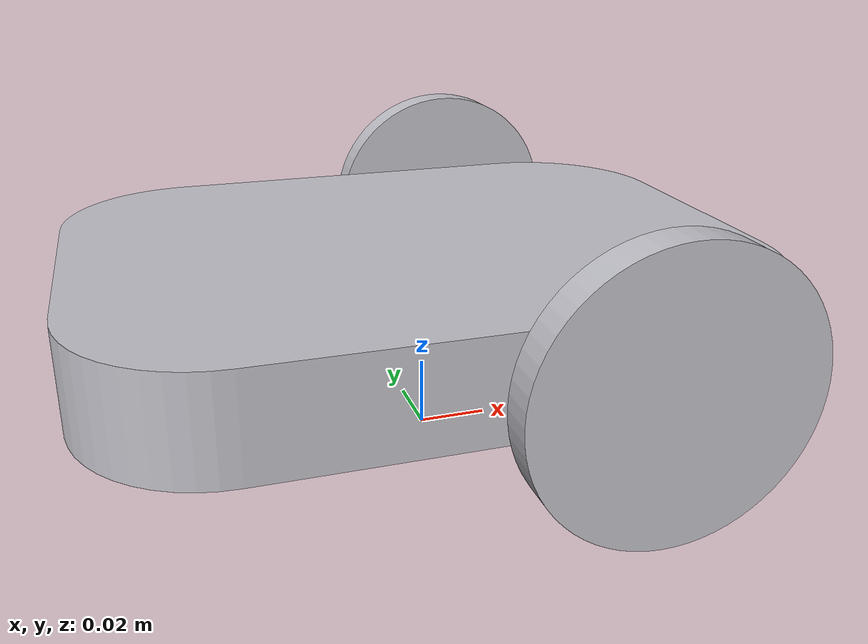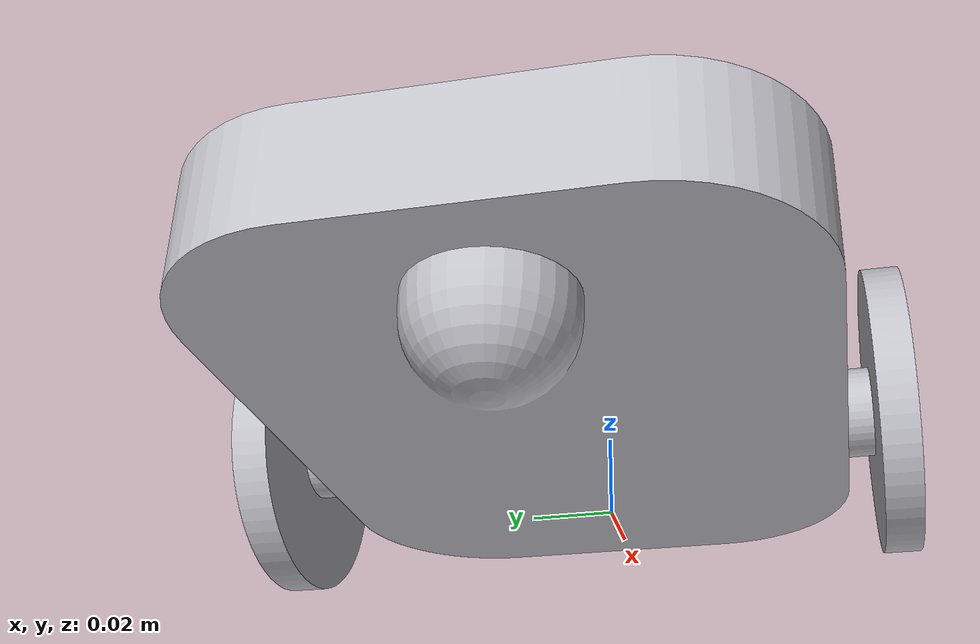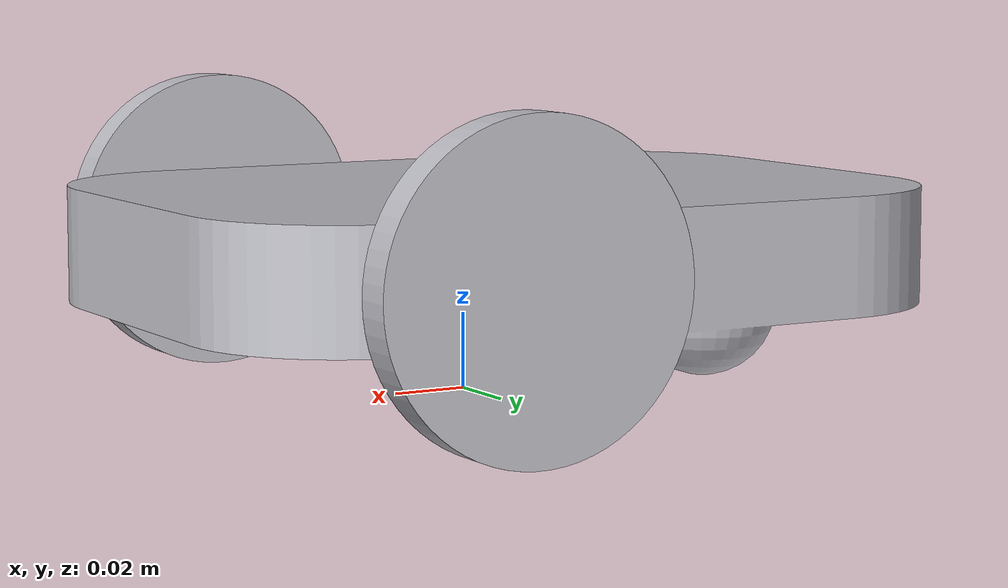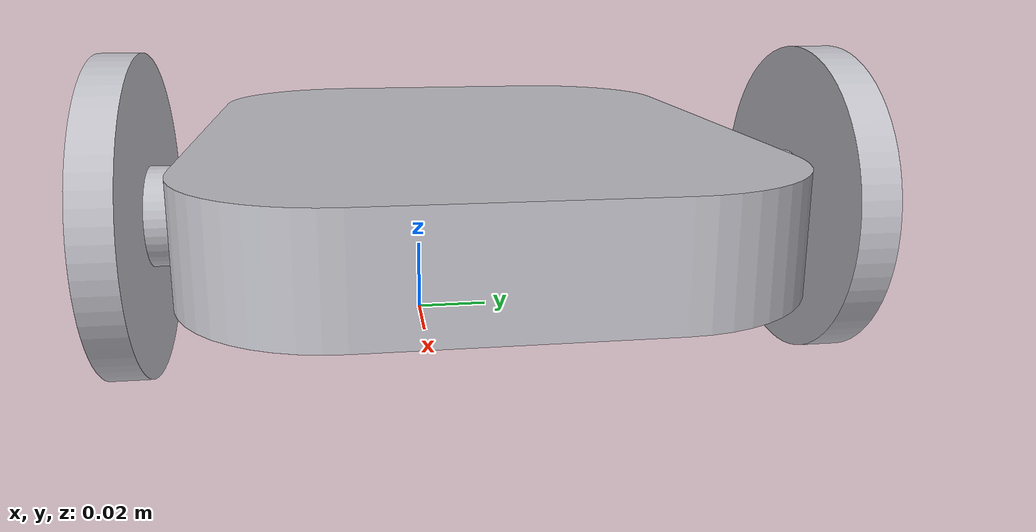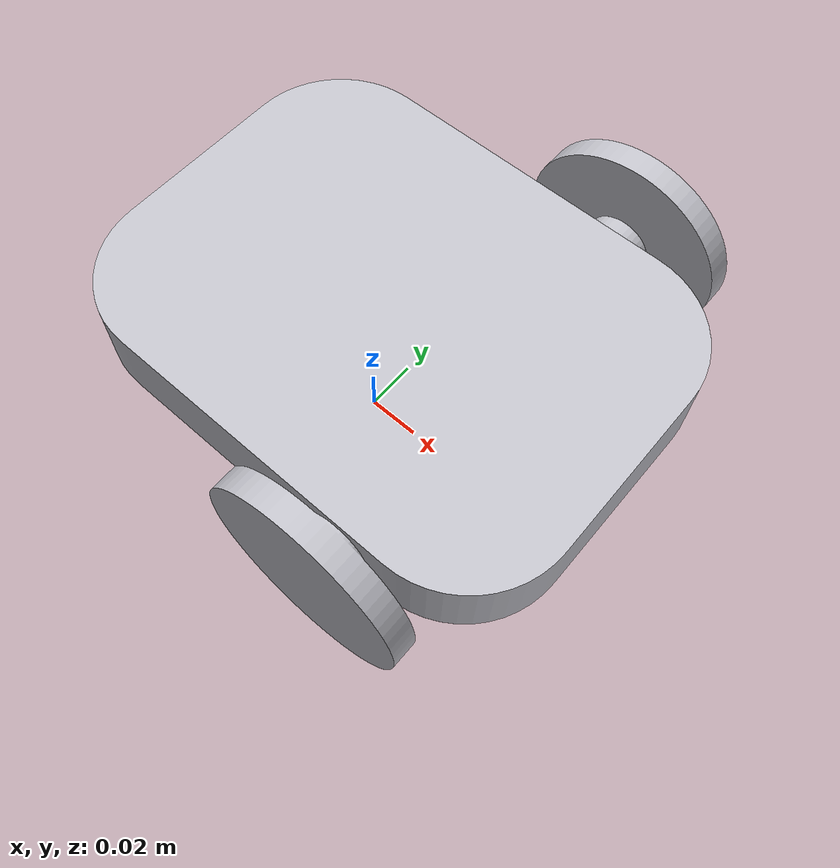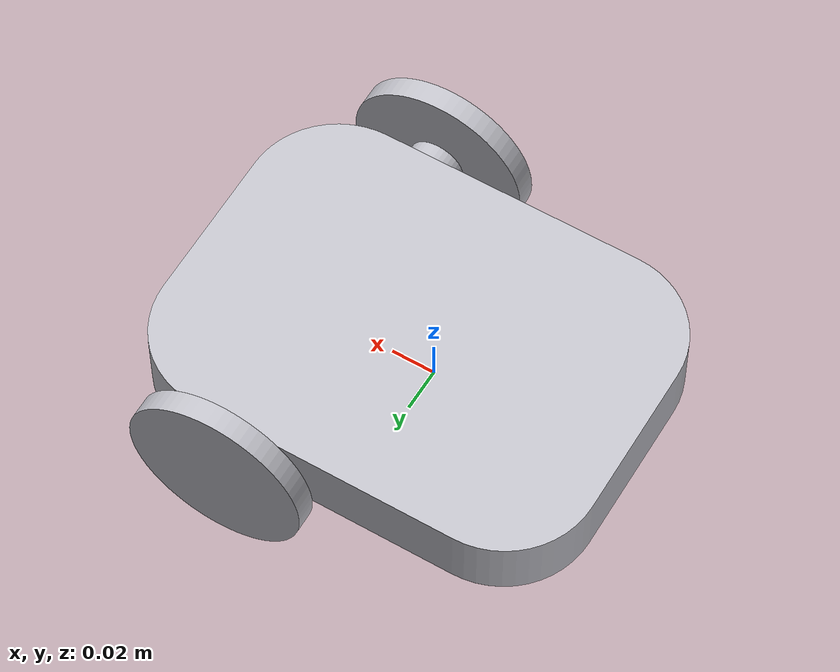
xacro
<?xml version="1.0" ?>
<robot name="robot" xmlns:xacro="http://www.ros.org/wiki/xacro">

<xacro:include filename="$(find robot_description)/urdf/materials.xacro" />
<xacro:include filename="$(find robot_description)/urdf/robot.trans" />
<xacro:include filename="$(find robot_description)/urdf/robot.gazebo" />
<link name="base_link">
  <inertial>
    <origin rpy="0 0 0" xyz="-0.006669103534546627 0.014240026478576438 0.03969927792105662"/>
    <mass value="6.344399168088986"/>
    <inertia ixx="0.011346" ixy="0.0" ixz="-0.000267" iyy="0.021088" iyz="0.0" izz="0.031239"/>
  </inertial>
  <visual>
    <origin rpy="0 0 0" xyz="0 0 0"/>
    <geometry>
      <mesh filename="package://robot_description/meshes/base_link.stl" scale="0.001 0.001 0.001"/>
    </geometry>
    <material name="silver"/>
  </visual>
  <collision>
    <origin rpy="0 0 0" xyz="0 0 0"/>
    <geometry>
      <mesh filename="package://robot_description/meshes/base_link.stl" scale="0.001 0.001 0.001"/>
    </geometry>
  </collision>
</link>

<link name="left_wheel_1">
  <inertial>
    <origin rpy="0 0 0" xyz="-5.430700493469498e-08 -0.010902869603195108 4.3981357170791435e-07"/>
    <mass value="0.45238443337840734"/>
    <inertia ixx="0.000172" ixy="0.0" ixz="0.0" iyy="0.00032" iyz="0.0" izz="0.000172"/>
  </inertial>
  <visual>
    <origin rpy="0 0 0" xyz="-0.038828 0.06076 -0.040405"/>
    <geometry>
      <mesh filename="package://robot_description/meshes/left_wheel_1.stl" scale="0.001 0.001 0.001"/>
    </geometry>
    <material name="silver"/>
  </visual>
  <collision>
    <origin rpy="0 0 0" xyz="-0.038828 0.06076 -0.040405"/>
    <geometry>
      <mesh filename="package://robot_description/meshes/left_wheel_1.stl" scale="0.001 0.001 0.001"/>
    </geometry>
  </collision>
</link>

<link name="right_wheel_1">
  <inertial>
    <origin rpy="0 0 0" xyz="-5.430728311495159e-08 0.01090292256034786 4.398135709723916e-07"/>
    <mass value="0.45238443337841155"/>
    <inertia ixx="0.000172" ixy="-0.0" ixz="0.0" iyy="0.00032" iyz="0.0" izz="0.000172"/>
  </inertial>
  <visual>
    <origin rpy="0 0 0" xyz="-0.038828 -0.08924 -0.040405"/>
    <geometry>
      <mesh filename="package://robot_description/meshes/right_wheel_1.stl" scale="0.001 0.001 0.001"/>
    </geometry>
    <material name="silver"/>
  </visual>
  <collision>
    <origin rpy="0 0 0" xyz="-0.038828 -0.08924 -0.040405"/>
    <geometry>
      <mesh filename="package://robot_description/meshes/right_wheel_1.stl" scale="0.001 0.001 0.001"/>
    </geometry>
  </collision>
</link>

<joint name="Rev3" type="continuous">
  <origin rpy="0 0 0" xyz="0.038828 -0.06076 0.040405"/>
  <parent link="base_link"/>
  <child link="left_wheel_1"/>
  <axis xyz="0.0 -1.0 -0.0"/>
</joint>

<joint name="Rev4" type="continuous">
  <origin rpy="0 0 0" xyz="0.038828 0.08924 0.040405"/>
  <parent link="base_link"/>
  <child link="right_wheel_1"/>
  <axis xyz="0.0 -1.0 -0.0"/>
</joint>

</robot>

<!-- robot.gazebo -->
<robot name="robot" xmlns:xacro="http://www.ros.org/wiki/xacro" >

<xacro:property name="body_color" value="Gazebo/Silver" />

<gazebo>
  <plugin filename="libgazebo_ros_control.so" name="control"/>
</gazebo>
<gazebo reference="base_link">
  <material>${body_color}</material>
  <mu1>0.2</mu1>
  <mu2>0.2</mu2>
  <selfCollide>true</selfCollide>
  <gravity>true</gravity>
</gazebo>

<gazebo reference="left_wheel_1">
  <material>${body_color}</material>
  <mu1>100</mu1>
  <mu2>100</mu2>
  <selfCollide>true</selfCollide>
</gazebo>

<gazebo reference="right_wheel_1">
  <material>${body_color}</material>
  <mu1>100</mu1>
  <mu2>100</mu2>
  <selfCollide>true</selfCollide>
</gazebo>

<gazebo>
  <plugin name="differential_drive_controller" filename="libgazebo_ros_diff_drive.so">

    <!-- Plugin update rate in Hz -->
    <updateRate>10</updateRate>

    <!-- Name of left joint, defaults to `left_joint` -->
    <leftJoint>Rev3</leftJoint>

    <!-- Name of right joint, defaults to `right_joint` -->
    <rightJoint>Rev4</rightJoint>

    <!-- The distance from the center of one wheel to the other, in meters, defaults to 0.34 m -->

    <!-- Diameter of the wheels, in meters, defaults to 0.15 m -->

    <!-- Wheel acceleration, in rad/s^2, defaults to 0.0 rad/s^2 -->
    <wheelAcceleration>1.0</wheelAcceleration>

    <!-- Maximum torque which the wheels can produce, in Nm, defaults to 5 Nm -->
    <wheelTorque>20</wheelTorque>

    <!-- Topic to receive geometry_msgs/Twist message commands, defaults to `cmd_vel` -->
    <commandTopic>cmd_vel</commandTopic>

    <!-- Topic to publish nav_msgs/Odometry messages, defaults to `odom` -->
    <odometryTopic>odom</odometryTopic>

    <!-- Odometry frame, defaults to `odom` -->
    <odometryFrame>odom</odometryFrame>

    <!-- Robot frame to calculate odometry from, defaults to `base_footprint` -->
    <robotBaseFrame>base_link</robotBaseFrame>

    <!-- Odometry source, 0 for ENCODER, 1 for WORLD, defaults to WORLD -->
    <odometrySource>1</odometrySource>

    <!-- Set to true to publish transforms for the wheel links, defaults to false -->
    <publishWheelTF>true</publishWheelTF>

    <!-- Set to true to publish transforms for the odometry, defaults to true -->
    <publishOdom>true</publishOdom>

    <!-- Set to true to publish sensor_msgs/JointState on /joint_states for the wheel joints, defaults to false -->
    <publishWheelJointState>true</publishWheelJointState>

    <!-- Set to true to swap right and left wheels, defaults to true -->
    <legacyMode>false</legacyMode>
  </plugin>
</gazebo>

</robot>
